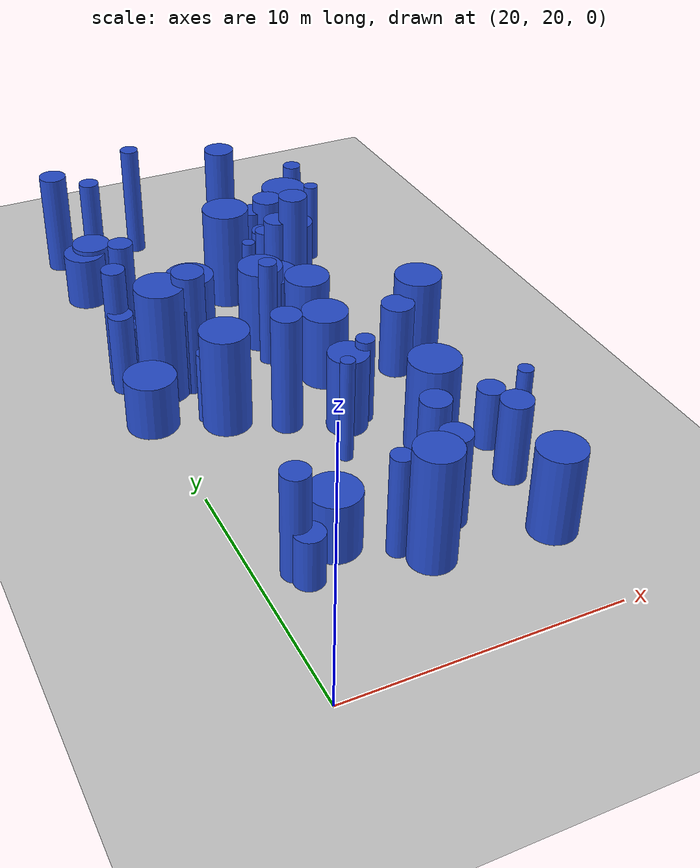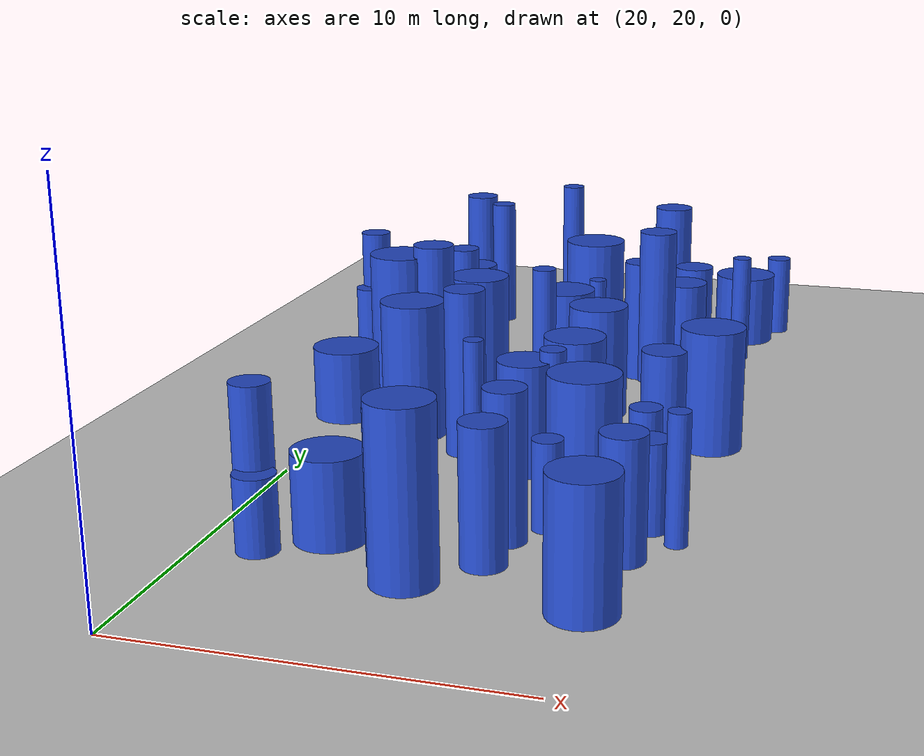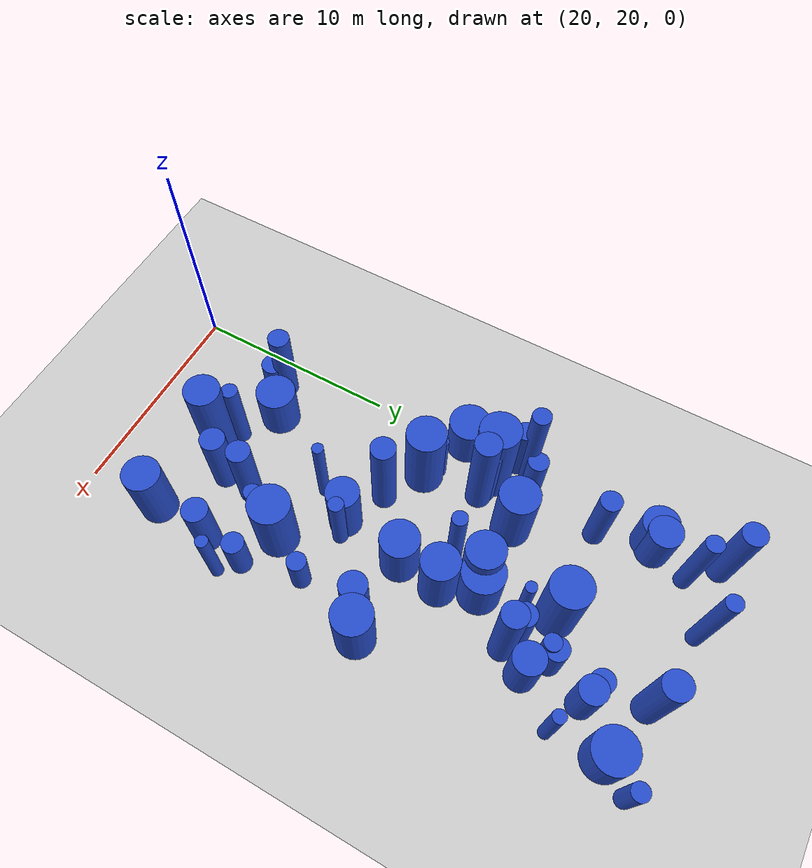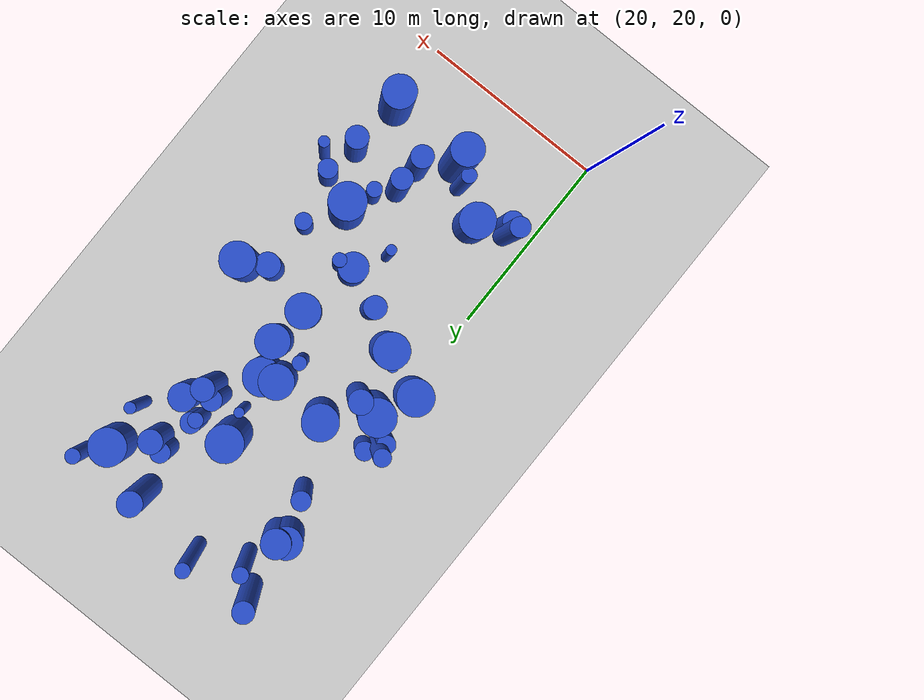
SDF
<sdf version="1.6">
 <world name="default">
  <model name="ground_plane">
   <static>1</static>
   <link name="link">
    <collision name="collision">
     <geometry><plane><normal>0 0 1</normal><size>100 100</size></plane></geometry>
     <surface><friction><ode><mu>100</mu><mu2>50</mu2></ode></friction></surface>
    </collision>
    <visual name="visual">
     <cast_shadows>0</cast_shadows>
     <geometry><plane><normal>0 0 1</normal><size>100 100</size></plane></geometry>
     <material>
      <script><uri>file://media/materials/scripts/gazebo.material</uri><name>Gazebo/Grey</name></script>
     </material>
    </visual>
   </link>
  </model>
  <model name="10">
   <static>0</static>
   <link name="link">
    <inertial>
     <mass>2</mass>
     <inertia><ixx>3.37741</ixx><ixy>0</ixy><ixz>0</ixz><iyy>3.37741</iyy><iyz>0</iyz><izz>0.399415</izz></inertia>
    </inertial>
    <collision name="collision">
     <geometry><cylinder><length>4.36649</length><radius>0.631993</radius></cylinder></geometry>
     <surface><contact><collide_without_contact>1</collide_without_contact></contact></surface>
    </collision>
    <visual name="visual">
     <geometry><cylinder><length>4.36649</length><radius>0.631993</radius></cylinder></geometry>
     <material>
      <script><uri>file://media/materials/scripts/gazebo.material</uri><name>Gazebo/Blue</name></script>
     </material>
    </visual>
    <gravity>0</gravity>
   </link>
   <pose>27.4503 47.0755 2.18325 0 -0 0</pose>
  </model>
  <model name="11">
   <static>0</static>
   <link name="link">
    <inertial>
     <mass>2</mass>
     <inertia><ixx>1.88105</ixx><ixy>0</ixy><ixz>0</ixz><iyy>1.88105</iyy><iyz>0</iyz><izz>0.812984</izz></inertia>
    </inertial>
    <collision name="collision">
     <geometry><cylinder><length>2.97445</length><radius>0.901656</radius></cylinder></geometry>
     <surface><contact><collide_without_contact>1</collide_without_contact></contact></surface>
    </collision>
    <visual name="visual">
     <geometry><cylinder><length>2.97445</length><radius>0.901656</radius></cylinder></geometry>
     <material>
      <script><uri>file://media/materials/scripts/gazebo.material</uri><name>Gazebo/Blue</name></script>
     </material>
    </visual>
    <gravity>0</gravity>
   </link>
   <pose>26.8547 34.9896 1.48722 0 -0 0</pose>
  </model>
  <model name="13">
   <static>0</static>
   <link name="link">
    <inertial>
     <mass>2</mass>
     <inertia><ixx>2.71597</ixx><ixy>0</ixy><ixz>0</ixz><iyy>2.71597</iyy><iyz>0</iyz><izz>0.923373</izz></inertia>
    </inertial>
    <collision name="collision">
     <geometry><cylinder><length>3.67773</length><radius>0.960923</radius></cylinder></geometry>
     <surface><contact><collide_without_contact>1</collide_without_contact></contact></surface>
    </collision>
    <visual name="visual">
     <geometry><cylinder><length>3.67773</length><radius>0.960923</radius></cylinder></geometry>
     <material>
      <script><uri>file://media/materials/scripts/gazebo.material</uri><name>Gazebo/Blue</name></script>
     </material>
    </visual>
    <gravity>0</gravity>
   </link>
   <pose>28.4623 29.5513 1.83887 0 -0 0</pose>
  </model>
  <model name="16">
   <static>0</static>
   <link name="link">
    <inertial>
     <mass>2</mass>
     <inertia><ixx>1.57186</ixx><ixy>0</ixy><ixz>0</ixz><iyy>1.57186</iyy><iyz>0</iyz><izz>0.39585</izz></inertia>
    </inertial>
    <collision name="collision">
     <geometry><cylinder><length>2.87117</length><radius>0.629166</radius></cylinder></geometry>
     <surface><contact><collide_without_contact>1</collide_without_contact></contact></surface>
    </collision>
    <visual name="visual">
     <geometry><cylinder><length>2.87117</length><radius>0.629166</radius></cylinder></geometry>
     <material>
      <script><uri>file://media/materials/scripts/gazebo.material</uri><name>Gazebo/Blue</name></script>
     </material>
    </visual>
    <gravity>0</gravity>
   </link>
   <pose>28.6502 44.5978 1.43558 0 -0 0</pose>
  </model>
  <model name="27">
   <static>0</static>
   <link name="link">
    <inertial>
     <mass>2</mass>
     <inertia><ixx>3.29031</ixx><ixy>0</ixy><ixz>0</ixz><iyy>3.29031</iyy><iyz>0</iyz><izz>0.876091</izz></inertia>
    </inertial>
    <collision name="collision">
     <geometry><cylinder><length>4.13686</length><radius>0.935998</radius></cylinder></geometry>
     <surface><contact><collide_without_contact>1</collide_without_contact></contact></surface>
    </collision>
    <visual name="visual">
     <geometry><cylinder><length>4.13686</length><radius>0.935998</radius></cylinder></geometry>
     <material>
      <script><uri>file://media/materials/scripts/gazebo.material</uri><name>Gazebo/Blue</name></script>
     </material>
    </visual>
    <gravity>0</gravity>
   </link>
   <pose>25.7568 42.1534 2.06843 0 -0 0</pose>
  </model>
  <model name="31">
   <static>0</static>
   <link name="link">
    <inertial>
     <mass>2</mass>
     <inertia>
      <ixx>0.960927</ixx>
      <ixy>0</ixy>
      <ixz>0</ixz>
      <iyy>0.960927</iyy>
      <iyz>0</iyz>
      <izz>0.413143</izz>
     </inertia>
    </inertial>
    <collision name="collision">
     <geometry><cylinder><length>2.12747</length><radius>0.642762</radius></cylinder></geometry>
     <surface><contact><collide_without_contact>1</collide_without_contact></contact></surface>
    </collision>
    <visual name="visual">
     <geometry><cylinder><length>2.12747</length><radius>0.642762</radius></cylinder></geometry>
     <material>
      <script><uri>file://media/materials/scripts/gazebo.material</uri><name>Gazebo/Blue</name></script>
     </material>
    </visual>
    <gravity>0</gravity>
   </link>
   <pose>29.9876 46.2303 1.06374 0 -0 0</pose>
  </model>
  <model name="47">
   <static>0</static>
   <link name="link">
    <inertial>
     <mass>2</mass>
     <inertia><ixx>2.29041</ixx><ixy>0</ixy><ixz>0</ixz><iyy>2.29041</iyy><iyz>0</iyz><izz>0.757429</izz></inertia>
    </inertial>
    <collision name="collision">
     <geometry><cylinder><length>3.38677</length><radius>0.870304</radius></cylinder></geometry>
     <surface><contact><collide_without_contact>1</collide_without_contact></contact></surface>
    </collision>
    <visual name="visual">
     <geometry><cylinder><length>3.38677</length><radius>0.870304</radius></cylinder></geometry>
     <material>
      <script><uri>file://media/materials/scripts/gazebo.material</uri><name>Gazebo/Blue</name></script>
     </material>
    </visual>
    <gravity>0</gravity>
   </link>
   <pose>29.8515 23.8039 1.69338 0 -0 0</pose>
  </model>
  <model name="48">
   <static>0</static>
   <link name="link">
    <inertial>
     <mass>2</mass>
     <inertia>
      <ixx>0.820157</ixx>
      <ixy>0</ixy>
      <ixz>0</ixz>
      <iyy>0.820157</iyy>
      <iyz>0</iyz>
      <izz>0.29591</izz>
     </inertia>
    </inertial>
    <collision name="collision">
     <geometry><cylinder><length>2.00829</length><radius>0.543976</radius></cylinder></geometry>
     <surface><contact><collide_without_contact>1</collide_without_contact></contact></surface>
    </collision>
    <visual name="visual">
     <geometry><cylinder><length>2.00829</length><radius>0.543976</radius></cylinder></geometry>
     <material>
      <script><uri>file://media/materials/scripts/gazebo.material</uri><name>Gazebo/Blue</name></script>
     </material>
    </visual>
    <gravity>0</gravity>
   </link>
   <pose>21.5362 24.945 1.00414 0 -0 0</pose>
  </model>
  <model name="59">
   <static>0</static>
   <link name="link">
    <inertial>
     <mass>2</mass>
     <inertia><ixx>4.03228</ixx><ixy>0</ixy><ixz>0</ixz><iyy>4.03228</iyy><iyz>0</iyz><izz>0.883964</izz></inertia>
    </inertial>
    <collision name="collision">
     <geometry><cylinder><length>4.64131</length><radius>0.940194</radius></cylinder></geometry>
     <surface><contact><collide_without_contact>1</collide_without_contact></contact></surface>
    </collision>
    <visual name="visual">
     <geometry><cylinder><length>4.64131</length><radius>0.940194</radius></cylinder></geometry>
     <material>
      <script><uri>file://media/materials/scripts/gazebo.material</uri><name>Gazebo/Blue</name></script>
     </material>
    </visual>
    <gravity>0</gravity>
   </link>
   <pose>20.989 36.6588 2.32066 0 -0 0</pose>
  </model>
  <model name="62">
   <static>0</static>
   <link name="link">
    <inertial>
     <mass>2</mass>
     <inertia>
      <ixx>1.43756</ixx>
      <ixy>0</ixy>
      <ixz>0</ixz>
      <iyy>1.43756</iyy>
      <iyz>0</iyz>
      <izz>0.0997428</izz>
     </inertia>
    </inertial>
    <collision name="collision">
     <geometry><cylinder><length>2.8855</length><radius>0.315821</radius></cylinder></geometry>
     <surface><contact><collide_without_contact>1</collide_without_contact></contact></surface>
    </collision>
    <visual name="visual">
     <geometry><cylinder><length>2.8855</length><radius>0.315821</radius></cylinder></geometry>
     <material>
      <script><uri>file://media/materials/scripts/gazebo.material</uri><name>Gazebo/Blue</name></script>
     </material>
    </visual>
    <gravity>0</gravity>
   </link>
   <pose>21.7733 34.3418 1.44275 0 -0 0</pose>
  </model>
  <model name="63">
   <static>0</static>
   <link name="link">
    <inertial>
     <mass>2</mass>
     <inertia><ixx>1.03289</ixx><ixy>0</ixy><ixz>0</ixz><iyy>1.03289</iyy><iyz>0</iyz><izz>0.164469</izz></inertia>
    </inertial>
    <collision name="collision">
     <geometry><cylinder><length>2.38829</length><radius>0.405548</radius></cylinder></geometry>
     <surface><contact><collide_without_contact>1</collide_without_contact></contact></surface>
    </collision>
    <visual name="visual">
     <geometry><cylinder><length>2.38829</length><radius>0.405548</radius></cylinder></geometry>
     <material>
      <script><uri>file://media/materials/scripts/gazebo.material</uri><name>Gazebo/Blue</name></script>
     </material>
    </visual>
    <gravity>0</gravity>
   </link>
   <pose>27.9011 28.096 1.19414 0 -0 0</pose>
  </model>
  <model name="68">
   <static>0</static>
   <link name="link">
    <inertial>
     <mass>2</mass>
     <inertia><ixx>1.17766</ixx><ixy>0</ixy><ixz>0</ixz><iyy>1.17766</iyy><iyz>0</iyz><izz>0.157599</izz></inertia>
    </inertial>
    <collision name="collision">
     <geometry><cylinder><length>2.56772</length><radius>0.396987</radius></cylinder></geometry>
     <surface><contact><collide_without_contact>1</collide_without_contact></contact></surface>
    </collision>
    <visual name="visual">
     <geometry><cylinder><length>2.56772</length><radius>0.396987</radius></cylinder></geometry>
     <material>
      <script><uri>file://media/materials/scripts/gazebo.material</uri><name>Gazebo/Blue</name></script>
     </material>
    </visual>
    <gravity>0</gravity>
   </link>
   <pose>27.6168 42.4632 1.28386 0 -0 0</pose>
  </model>
  <model name="70">
   <static>0</static>
   <link name="link">
    <inertial>
     <mass>2</mass>
     <inertia>
      <ixx>2.04255</ixx>
      <ixy>0</ixy>
      <ixz>0</ixz>
      <iyy>2.04255</iyy>
      <iyz>0</iyz>
      <izz>0.0888972</izz>
     </inertia>
    </inertial>
    <collision name="collision">
     <geometry><cylinder><length>3.46246</length><radius>0.298156</radius></cylinder></geometry>
     <surface><contact><collide_without_contact>1</collide_without_contact></contact></surface>
    </collision>
    <visual name="visual">
     <geometry><cylinder><length>3.46246</length><radius>0.298156</radius></cylinder></geometry>
     <material>
      <script><uri>file://media/materials/scripts/gazebo.material</uri><name>Gazebo/Blue</name></script>
     </material>
    </visual>
    <gravity>0</gravity>
   </link>
   <pose>30.3781 43.7936 1.73123 0 -0 0</pose>
  </model>
  <model name="79">
   <static>0</static>
   <link name="link">
    <inertial>
     <mass>2</mass>
     <inertia><ixx>4.14774</ixx><ixy>0</ixy><ixz>0</ixz><iyy>4.14774</iyy><iyz>0</iyz><izz>0.331345</izz></inertia>
    </inertial>
    <collision name="collision">
     <geometry><cylinder><length>4.88799</length><radius>0.575626</radius></cylinder></geometry>
     <surface><contact><collide_without_contact>1</collide_without_contact></contact></surface>
    </collision>
    <visual name="visual">
     <geometry><cylinder><length>4.88799</length><radius>0.575626</radius></cylinder></geometry>
     <material>
      <script><uri>file://media/materials/scripts/gazebo.material</uri><name>Gazebo/Blue</name></script>
     </material>
    </visual>
    <gravity>0</gravity>
   </link>
   <pose>28.1269 40.6889 2.44399 0 -0 0</pose>
  </model>
  <model name="90">
   <static>0</static>
   <link name="link">
    <inertial>
     <mass>2</mass>
     <inertia><ixx>3.14456</ixx><ixy>0</ixy><ixz>0</ixz><iyy>3.14456</iyy><iyz>0</iyz><izz>0.16502</izz></inertia>
    </inertial>
    <collision name="collision">
     <geometry><cylinder><length>4.28629</length><radius>0.406226</radius></cylinder></geometry>
     <surface><contact><collide_without_contact>1</collide_without_contact></contact></surface>
    </collision>
    <visual name="visual">
     <geometry><cylinder><length>4.28629</length><radius>0.406226</radius></cylinder></geometry>
     <material>
      <script><uri>file://media/materials/scripts/gazebo.material</uri><name>Gazebo/Blue</name></script>
     </material>
    </visual>
    <gravity>0</gravity>
   </link>
   <pose>21.3311 46.4355 2.14315 0 -0 0</pose>
  </model>
  <model name="95">
   <static>0</static>
   <link name="link">
    <inertial>
     <mass>2</mass>
     <inertia><ixx>1.74657</ixx><ixy>0</ixy><ixz>0</ixz><iyy>1.74657</iyy><iyz>0</iyz><izz>0.521545</izz></inertia>
    </inertial>
    <collision name="collision">
     <geometry><cylinder><length>2.98577</length><radius>0.722181</radius></cylinder></geometry>
     <surface><contact><collide_without_contact>1</collide_without_contact></contact></surface>
    </collision>
    <visual name="visual">
     <geometry><cylinder><length>2.98577</length><radius>0.722181</radius></cylinder></geometry>
     <material>
      <script><uri>file://media/materials/scripts/gazebo.material</uri><name>Gazebo/Blue</name></script>
     </material>
    </visual>
    <gravity>0</gravity>
   </link>
   <pose>28.7882 41.9118 1.49288 0 -0 0</pose>
  </model>
  <model name="103">
   <static>0</static>
   <link name="link">
    <inertial>
     <mass>2</mass>
     <inertia><ixx>1.77324</ixx><ixy>0</ixy><ixz>0</ixz><iyy>1.77324</iyy><iyz>0</iyz><izz>0.972228</izz></inertia>
    </inertial>
    <collision name="collision">
     <geometry><cylinder><length>2.77898</length><radius>0.986016</radius></cylinder></geometry>
     <surface><contact><collide_without_contact>1</collide_without_contact></contact></surface>
    </collision>
    <visual name="visual">
     <geometry><cylinder><length>2.77898</length><radius>0.986016</radius></cylinder></geometry>
     <material>
      <script><uri>file://media/materials/scripts/gazebo.material</uri><name>Gazebo/Blue</name></script>
     </material>
    </visual>
    <gravity>0</gravity>
   </link>
   <pose>26.3975 38.7434 1.38949 0 -0 0</pose>
  </model>
  <model name="114">
   <static>0</static>
   <link name="link">
    <inertial>
     <mass>2</mass>
     <inertia><ixx>1.3772</ixx><ixy>0</ixy><ixz>0</ixz><iyy>1.3772</iyy><iyz>0</iyz><izz>0.977936</izz></inertia>
    </inertial>
    <collision name="collision">
     <geometry><cylinder><length>2.30855</length><radius>0.988906</radius></cylinder></geometry>
     <surface><contact><collide_without_contact>1</collide_without_contact></contact></surface>
    </collision>
    <visual name="visual">
     <geometry><cylinder><length>2.30855</length><radius>0.988906</radius></cylinder></geometry>
     <material>
      <script><uri>file://media/materials/scripts/gazebo.material</uri><name>Gazebo/Blue</name></script>
     </material>
    </visual>
    <gravity>0</gravity>
   </link>
   <pose>30.1834 46.28 1.15427 0 -0 0</pose>
  </model>
  <model name="117">
   <static>0</static>
   <link name="link">
    <inertial>
     <mass>2</mass>
     <inertia><ixx>2.96429</ixx><ixy>0</ixy><ixz>0</ixz><iyy>2.96429</iyy><iyz>0</iyz><izz>0.263078</izz></inertia>
    </inertial>
    <collision name="collision">
     <geometry><cylinder><length>4.12268</length><radius>0.512911</radius></cylinder></geometry>
     <surface><contact><collide_without_contact>1</collide_without_contact></contact></surface>
    </collision>
    <visual name="visual">
     <geometry><cylinder><length>4.12268</length><radius>0.512911</radius></cylinder></geometry>
     <material>
      <script><uri>file://media/materials/scripts/gazebo.material</uri><name>Gazebo/Blue</name></script>
     </material>
    </visual>
    <gravity>0</gravity>
   </link>
   <pose>21.3006 25.4426 2.06134 0 -0 0</pose>
  </model>
  <model name="132">
   <static>0</static>
   <link name="link">
    <inertial>
     <mass>2</mass>
     <inertia><ixx>3.92176</ixx><ixy>0</ixy><ixz>0</ixz><iyy>3.92176</iyy><iyz>0</iyz><izz>0.324121</izz></inertia>
    </inertial>
    <collision name="collision">
     <geometry><cylinder><length>4.74955</length><radius>0.569316</radius></cylinder></geometry>
     <surface><contact><collide_without_contact>1</collide_without_contact></contact></surface>
    </collision>
    <visual name="visual">
     <geometry><cylinder><length>4.74955</length><radius>0.569316</radius></cylinder></geometry>
     <material>
      <script><uri>file://media/materials/scripts/gazebo.material</uri><name>Gazebo/Blue</name></script>
     </material>
    </visual>
    <gravity>0</gravity>
   </link>
   <pose>24.2784 32.7345 2.37477 0 -0 0</pose>
  </model>
  <model name="139">
   <static>0</static>
   <link name="link">
    <inertial>
     <mass>2</mass>
     <inertia><ixx>2.60105</ixx><ixy>0</ixy><ixz>0</ixz><iyy>2.60105</iyy><iyz>0</iyz><izz>0.858486</izz></inertia>
    </inertial>
    <collision name="collision">
     <geometry><cylinder><length>3.60982</length><radius>0.926545</radius></cylinder></geometry>
     <surface><contact><collide_without_contact>1</collide_without_contact></contact></surface>
    </collision>
    <visual name="visual">
     <geometry><cylinder><length>3.60982</length><radius>0.926545</radius></cylinder></geometry>
     <material>
      <script><uri>file://media/materials/scripts/gazebo.material</uri><name>Gazebo/Blue</name></script>
     </material>
    </visual>
    <gravity>0</gravity>
   </link>
   <pose>22.8437 38.6061 1.80491 0 -0 0</pose>
  </model>
  <model name="146">
   <static>0</static>
   <link name="link">
    <inertial>
     <mass>2</mass>
     <inertia><ixx>3.90844</ixx><ixy>0</ixy><ixz>0</ixz><iyy>3.90844</iyy><iyz>0</iyz><izz>0.141824</izz></inertia>
    </inertial>
    <collision name="collision">
     <geometry><cylinder><length>4.79845</length><radius>0.376595</radius></cylinder></geometry>
     <surface><contact><collide_without_contact>1</collide_without_contact></contact></surface>
    </collision>
    <visual name="visual">
     <geometry><cylinder><length>4.79845</length><radius>0.376595</radius></cylinder></geometry>
     <material>
      <script><uri>file://media/materials/scripts/gazebo.material</uri><name>Gazebo/Blue</name></script>
     </material>
    </visual>
    <gravity>0</gravity>
   </link>
   <pose>23.5936 47.7885 2.39923 0 -0 0</pose>
  </model>
  <model name="147">
   <static>0</static>
   <link name="link">
    <inertial>
     <mass>2</mass>
     <inertia><ixx>1.17156</ixx><ixy>0</ixy><ixz>0</ixz><iyy>1.17156</iyy><iyz>0</iyz><izz>0.711306</izz></inertia>
    </inertial>
    <collision name="collision">
     <geometry><cylinder><length>2.21256</length><radius>0.84339</radius></cylinder></geometry>
     <surface><contact><collide_without_contact>1</collide_without_contact></contact></surface>
    </collision>
    <visual name="visual">
     <geometry><cylinder><length>2.21256</length><radius>0.84339</radius></cylinder></geometry>
     <material>
      <script><uri>file://media/materials/scripts/gazebo.material</uri><name>Gazebo/Blue</name></script>
     </material>
    </visual>
    <gravity>0</gravity>
   </link>
   <pose>20.3388 44.4373 1.10628 0 -0 0</pose>
  </model>
  <model name="156">
   <static>0</static>
   <link name="link">
    <inertial>
     <mass>2</mass>
     <inertia>
      <ixx>0.933154</ixx>
      <ixy>0</ixy>
      <ixz>0</ixz>
      <iyy>0.933154</iyy>
      <iyz>0</iyz>
      <izz>0.201317</izz>
     </inertia>
    </inertial>
    <collision name="collision">
     <geometry><cylinder><length>2.23494</length><radius>0.448684</radius></cylinder></geometry>
     <surface><contact><collide_without_contact>1</collide_without_contact></contact></surface>
    </collision>
    <visual name="visual">
     <geometry><cylinder><length>2.23494</length><radius>0.448684</radius></cylinder></geometry>
     <material>
      <script><uri>file://media/materials/scripts/gazebo.material</uri><name>Gazebo/Blue</name></script>
     </material>
    </visual>
    <gravity>0</gravity>
   </link>
   <pose>29.659 31.5125 1.11747 0 -0 0</pose>
  </model>
  <model name="158">
   <static>0</static>
   <link name="link">
    <inertial>
     <mass>2</mass>
     <inertia><ixx>1.3482</ixx><ixy>0</ixy><ixz>0</ixz><iyy>1.3482</iyy><iyz>0</iyz><izz>0.881252</izz></inertia>
    </inertial>
    <collision name="collision">
     <geometry><cylinder><length>2.33355</length><radius>0.93875</radius></cylinder></geometry>
     <surface><contact><collide_without_contact>1</collide_without_contact></contact></surface>
    </collision>
    <visual name="visual">
     <geometry><cylinder><length>2.33355</length><radius>0.93875</radius></cylinder></geometry>
     <material>
      <script><uri>file://media/materials/scripts/gazebo.material</uri><name>Gazebo/Blue</name></script>
     </material>
    </visual>
    <gravity>0</gravity>
   </link>
   <pose>22.9559 26.086 1.16677 0 -0 0</pose>
  </model>
  <model name="165">
   <static>0</static>
   <link name="link">
    <inertial>
     <mass>2</mass>
     <inertia><ixx>2.51292</ixx><ixy>0</ixy><ixz>0</ixz><iyy>2.51292</iyy><iyz>0</iyz><izz>0.832812</izz></inertia>
    </inertial>
    <collision name="collision">
     <geometry><cylinder><length>3.5467</length><radius>0.912586</radius></cylinder></geometry>
     <surface><contact><collide_without_contact>1</collide_without_contact></contact></surface>
    </collision>
    <visual name="visual">
     <geometry><cylinder><length>3.5467</length><radius>0.912586</radius></cylinder></geometry>
     <material>
      <script><uri>file://media/materials/scripts/gazebo.material</uri><name>Gazebo/Blue</name></script>
     </material>
    </visual>
    <gravity>0</gravity>
   </link>
   <pose>30.8305 35.0294 1.77335 0 -0 0</pose>
  </model>
  <model name="174">
   <static>0</static>
   <link name="link">
    <inertial>
     <mass>2</mass>
     <inertia><ixx>3.70872</ixx><ixy>0</ixy><ixz>0</ixz><iyy>3.70872</iyy><iyz>0</iyz><izz>0.698748</izz></inertia>
    </inertial>
    <collision name="collision">
     <geometry><cylinder><length>4.48955</length><radius>0.835911</radius></cylinder></geometry>
     <surface><contact><collide_without_contact>1</collide_without_contact></contact></surface>
    </collision>
    <visual name="visual">
     <geometry><cylinder><length>4.48955</length><radius>0.835911</radius></cylinder></geometry>
     <material>
      <script><uri>file://media/materials/scripts/gazebo.material</uri><name>Gazebo/Blue</name></script>
     </material>
    </visual>
    <gravity>0</gravity>
   </link>
   <pose>25.5349 24.2179 2.24478 0 -0 0</pose>
  </model>
  <model name="201">
   <static>0</static>
   <link name="link">
    <inertial>
     <mass>2</mass>
     <inertia><ixx>1.67988</ixx><ixy>0</ixy><ixz>0</ixz><iyy>1.67988</iyy><iyz>0</iyz><izz>0.413438</izz></inertia>
    </inertial>
    <collision name="collision">
     <geometry><cylinder><length>2.97304</length><radius>0.642992</radius></cylinder></geometry>
     <surface><contact><collide_without_contact>1</collide_without_contact></contact></surface>
    </collision>
    <visual name="visual">
     <geometry><cylinder><length>2.97304</length><radius>0.642992</radius></cylinder></geometry>
     <material>
      <script><uri>file://media/materials/scripts/gazebo.material</uri><name>Gazebo/Blue</name></script>
     </material>
    </visual>
    <gravity>0</gravity>
   </link>
   <pose>29.5918 34.3148 1.48652 0 -0 0</pose>
  </model>
  <model name="221">
   <static>0</static>
   <link name="link">
    <inertial>
     <mass>2</mass>
     <inertia><ixx>1.25885</ixx><ixy>0</ixy><ixz>0</ixz><iyy>1.25885</iyy><iyz>0</iyz><izz>0.604768</izz></inertia>
    </inertial>
    <collision name="collision">
     <geometry><cylinder><length>2.39558</length><radius>0.777668</radius></cylinder></geometry>
     <surface><contact><collide_without_contact>1</collide_without_contact></contact></surface>
    </collision>
    <visual name="visual">
     <geometry><cylinder><length>2.39558</length><radius>0.777668</radius></cylinder></geometry>
     <material>
      <script><uri>file://media/materials/scripts/gazebo.material</uri><name>Gazebo/Blue</name></script>
     </material>
    </visual>
    <gravity>0</gravity>
   </link>
   <pose>20.7351 44.7429 1.19779 0 -0 0</pose>
  </model>
  <model name="225">
   <static>0</static>
   <link name="link">
    <inertial>
     <mass>2</mass>
     <inertia><ixx>4.17331</ixx><ixy>0</ixy><ixz>0</ixz><iyy>4.17331</iyy><iyz>0</iyz><izz>0.192739</izz></inertia>
    </inertial>
    <collision name="collision">
     <geometry><cylinder><length>4.94587</length><radius>0.439021</radius></cylinder></geometry>
     <surface><contact><collide_without_contact>1</collide_without_contact></contact></surface>
    </collision>
    <visual name="visual">
     <geometry><cylinder><length>4.94587</length><radius>0.439021</radius></cylinder></geometry>
     <material>
      <script><uri>file://media/materials/scripts/gazebo.material</uri><name>Gazebo/Blue</name></script>
     </material>
    </visual>
    <gravity>0</gravity>
   </link>
   <pose>19.6943 37.9431 2.47293 0 -0 0</pose>
  </model>
  <model name="236">
   <static>0</static>
   <link name="link">
    <inertial>
     <mass>2</mass>
     <inertia>
      <ixx>1.72869</ixx>
      <ixy>0</ixy>
      <ixz>0</ixz>
      <iyy>1.72869</iyy>
      <iyz>0</iyz>
      <izz>0.0703693</izz>
     </inertia>
    </inertial>
    <collision name="collision">
     <geometry><cylinder><length>3.18764</length><radius>0.265272</radius></cylinder></geometry>
     <surface><contact><collide_without_contact>1</collide_without_contact></contact></surface>
    </collision>
    <visual name="visual">
     <geometry><cylinder><length>3.18764</length><radius>0.265272</radius></cylinder></geometry>
     <material>
      <script><uri>file://media/materials/scripts/gazebo.material</uri><name>Gazebo/Blue</name></script>
     </material>
    </visual>
    <gravity>0</gravity>
   </link>
   <pose>26.1728 40.7338 1.59382 0 -0 0</pose>
  </model>
  <model name="240">
   <static>0</static>
   <link name="link">
    <inertial>
     <mass>2</mass>
     <inertia><ixx>3.38686</ixx><ixy>0</ixy><ixz>0</ixz><iyy>3.38686</iyy><iyz>0</iyz><izz>0.16913</izz></inertia>
    </inertial>
    <collision name="collision">
     <geometry><cylinder><length>4.45126</length><radius>0.411254</radius></cylinder></geometry>
     <surface><contact><collide_without_contact>1</collide_without_contact></contact></surface>
    </collision>
    <visual name="visual">
     <geometry><cylinder><length>4.45126</length><radius>0.411254</radius></cylinder></geometry>
     <material>
      <script><uri>file://media/materials/scripts/gazebo.material</uri><name>Gazebo/Blue</name></script>
     </material>
    </visual>
    <gravity>0</gravity>
   </link>
   <pose>25.4572 24.4716 2.22563 0 -0 0</pose>
  </model>
  <model name="319">
   <static>0</static>
   <link name="link">
    <inertial>
     <mass>2</mass>
     <inertia><ixx>2.28124</ixx><ixy>0</ixy><ixz>0</ixz><iyy>2.28124</iyy><iyz>0</iyz><izz>0.763136</izz></inertia>
    </inertial>
    <collision name="collision">
     <geometry><cylinder><length>3.3761</length><radius>0.873577</radius></cylinder></geometry>
     <surface><contact><collide_without_contact>1</collide_without_contact></contact></surface>
    </collision>
    <visual name="visual">
     <geometry><cylinder><length>3.3761</length><radius>0.873577</radius></cylinder></geometry>
     <material>
      <script><uri>file://media/materials/scripts/gazebo.material</uri><name>Gazebo/Blue</name></script>
     </material>
    </visual>
    <gravity>0</gravity>
   </link>
   <pose>27.0643 37.0284 1.68805 0 -0 0</pose>
  </model>
  <model name="321">
   <static>0</static>
   <link name="link">
    <inertial>
     <mass>2</mass>
     <inertia><ixx>1.24074</ixx><ixy>0</ixy><ixz>0</ixz><iyy>1.24074</iyy><iyz>0</iyz><izz>0.15485</izz></inertia>
    </inertial>
    <collision name="collision">
     <geometry><cylinder><length>2.64195</length><radius>0.39351</radius></cylinder></geometry>
     <surface><contact><collide_without_contact>1</collide_without_contact></contact></surface>
    </collision>
    <visual name="visual">
     <geometry><cylinder><length>2.64195</length><radius>0.39351</radius></cylinder></geometry>
     <material>
      <script><uri>file://media/materials/scripts/gazebo.material</uri><name>Gazebo/Blue</name></script>
     </material>
    </visual>
    <gravity>0</gravity>
   </link>
   <pose>31.186 47.5744 1.32097 0 -0 0</pose>
  </model>
  <model name="331">
   <static>0</static>
   <link name="link">
    <inertial>
     <mass>2</mass>
     <inertia><ixx>1.10443</ixx><ixy>0</ixy><ixz>0</ixz><iyy>1.10443</iyy><iyz>0</iyz><izz>0.261158</izz></inertia>
    </inertial>
    <collision name="collision">
     <geometry><cylinder><length>2.41725</length><radius>0.511036</radius></cylinder></geometry>
     <surface><contact><collide_without_contact>1</collide_without_contact></contact></surface>
    </collision>
    <visual name="visual">
     <geometry><cylinder><length>2.41725</length><radius>0.511036</radius></cylinder></geometry>
     <material>
      <script><uri>file://media/materials/scripts/gazebo.material</uri><name>Gazebo/Blue</name></script>
     </material>
    </visual>
    <gravity>0</gravity>
   </link>
   <pose>30.3345 28.7369 1.20863 0 -0 0</pose>
  </model>
  <model name="333">
   <static>0</static>
   <link name="link">
    <inertial>
     <mass>2</mass>
     <inertia><ixx>2.64031</ixx><ixy>0</ixy><ixz>0</ixz><iyy>2.64031</iyy><iyz>0</iyz><izz>0.147649</izz></inertia>
    </inertial>
    <collision name="collision">
     <geometry><cylinder><length>3.92414</length><radius>0.384251</radius></cylinder></geometry>
     <surface><contact><collide_without_contact>1</collide_without_contact></contact></surface>
    </collision>
    <visual name="visual">
     <geometry><cylinder><length>3.92414</length><radius>0.384251</radius></cylinder></geometry>
     <material>
      <script><uri>file://media/materials/scripts/gazebo.material</uri><name>Gazebo/Blue</name></script>
     </material>
    </visual>
    <gravity>0</gravity>
   </link>
   <pose>24.7073 25.0018 1.96207 0 -0 0</pose>
  </model>
  <model name="338">
   <static>0</static>
   <link name="link">
    <inertial>
     <mass>2</mass>
     <inertia><ixx>1.96786</ixx><ixy>0</ixy><ixz>0</ixz><iyy>1.96786</iyy><iyz>0</iyz><izz>0.596006</izz></inertia>
    </inertial>
    <collision name="collision">
     <geometry><cylinder><length>3.16531</length><radius>0.772014</radius></cylinder></geometry>
     <surface><contact><collide_without_contact>1</collide_without_contact></contact></surface>
    </collision>
    <visual name="visual">
     <geometry><cylinder><length>3.16531</length><radius>0.772014</radius></cylinder></geometry>
     <material>
      <script><uri>file://media/materials/scripts/gazebo.material</uri><name>Gazebo/Blue</name></script>
     </material>
    </visual>
    <gravity>0</gravity>
   </link>
   <pose>26.2659 31.8142 1.58265 0 -0 0</pose>
  </model>
  <model name="346">
   <static>0</static>
   <link name="link">
    <inertial>
     <mass>2</mass>
     <inertia><ixx>2.33877</ixx><ixy>0</ixy><ixz>0</ixz><iyy>2.33877</iyy><iyz>0</iyz><izz>0.793611</izz></inertia>
    </inertial>
    <collision name="collision">
     <geometry><cylinder><length>3.41347</length><radius>0.890849</radius></cylinder></geometry>
     <surface><contact><collide_without_contact>1</collide_without_contact></contact></surface>
    </collision>
    <visual name="visual">
     <geometry><cylinder><length>3.41347</length><radius>0.890849</radius></cylinder></geometry>
     <material>
      <script><uri>file://media/materials/scripts/gazebo.material</uri><name>Gazebo/Blue</name></script>
     </material>
    </visual>
    <gravity>0</gravity>
   </link>
   <pose>25.7003 38.4359 1.70673 0 -0 0</pose>
  </model>
  <model name="348">
   <static>0</static>
   <link name="link">
    <inertial>
     <mass>2</mass>
     <inertia><ixx>2.75886</ixx><ixy>0</ixy><ixz>0</ixz><iyy>2.75886</iyy><iyz>0</iyz><izz>0.307883</izz></inertia>
    </inertial>
    <collision name="collision">
     <geometry><cylinder><length>3.95342</length><radius>0.554872</radius></cylinder></geometry>
     <surface><contact><collide_without_contact>1</collide_without_contact></contact></surface>
    </collision>
    <visual name="visual">
     <geometry><cylinder><length>3.95342</length><radius>0.554872</radius></cylinder></geometry>
     <material>
      <script><uri>file://media/materials/scripts/gazebo.material</uri><name>Gazebo/Blue</name></script>
     </material>
    </visual>
    <gravity>0</gravity>
   </link>
   <pose>27.1026 27.1209 1.97671 0 -0 0</pose>
  </model>
  <model name="358">
   <static>0</static>
   <link name="link">
    <inertial>
     <mass>2</mass>
     <inertia>
      <ixx>2.02351</ixx>
      <ixy>0</ixy>
      <ixz>0</ixz>
      <iyy>2.02351</iyy>
      <iyz>0</iyz>
      <izz>0.0849161</izz>
     </inertia>
    </inertial>
    <collision name="collision">
     <geometry><cylinder><length>3.44765</length><radius>0.291404</radius></cylinder></geometry>
     <surface><contact><collide_without_contact>1</collide_without_contact></contact></surface>
    </collision>
    <visual name="visual">
     <geometry><cylinder><length>3.44765</length><radius>0.291404</radius></cylinder></geometry>
     <material>
      <script><uri>file://media/materials/scripts/gazebo.material</uri><name>Gazebo/Blue</name></script>
     </material>
    </visual>
    <gravity>0</gravity>
   </link>
   <pose>31.1677 27.9876 1.72383 0 -0 0</pose>
  </model>
  <model name="360">
   <static>0</static>
   <link name="link">
    <inertial>
     <mass>2</mass>
     <inertia><ixx>2.29079</ixx><ixy>0</ixy><ixz>0</ixz><iyy>2.29079</iyy><iyz>0</iyz><izz>0.246065</izz></inertia>
    </inertial>
    <collision name="collision">
     <geometry><cylinder><length>3.60646</length><radius>0.496049</radius></cylinder></geometry>
     <surface><contact><collide_without_contact>1</collide_without_contact></contact></surface>
    </collision>
    <visual name="visual">
     <geometry><cylinder><length>3.60646</length><radius>0.496049</radius></cylinder></geometry>
     <material>
      <script><uri>file://media/materials/scripts/gazebo.material</uri><name>Gazebo/Blue</name></script>
     </material>
    </visual>
    <gravity>0</gravity>
   </link>
   <pose>21.2186 42.0883 1.80323 0 -0 0</pose>
  </model>
  <model name="361">
   <static>0</static>
   <link name="link">
    <inertial>
     <mass>2</mass>
     <inertia><ixx>1.91356</ixx><ixy>0</ixy><ixz>0</ixz><iyy>1.91356</iyy><iyz>0</iyz><izz>0.2254</izz></inertia>
    </inertial>
    <collision name="collision">
     <geometry><cylinder><length>3.28712</length><radius>0.474763</radius></cylinder></geometry>
     <surface><contact><collide_without_contact>1</collide_without_contact></contact></surface>
    </collision>
    <visual name="visual">
     <geometry><cylinder><length>3.28712</length><radius>0.474763</radius></cylinder></geometry>
     <material>
      <script><uri>file://media/materials/scripts/gazebo.material</uri><name>Gazebo/Blue</name></script>
     </material>
    </visual>
    <gravity>0</gravity>
   </link>
   <pose>19.6861 37.478 1.64356 0 -0 0</pose>
  </model>
  <model name="366">
   <static>0</static>
   <link name="link">
    <inertial>
     <mass>2</mass>
     <inertia><ixx>1.11904</ixx><ixy>0</ixy><ixz>0</ixz><iyy>1.11904</iyy><iyz>0</iyz><izz>0.291069</izz></inertia>
    </inertial>
    <collision name="collision">
     <geometry><cylinder><length>2.41682</length><radius>0.539508</radius></cylinder></geometry>
     <surface><contact><collide_without_contact>1</collide_without_contact></contact></surface>
    </collision>
    <visual name="visual">
     <geometry><cylinder><length>2.41682</length><radius>0.539508</radius></cylinder></geometry>
     <material>
      <script><uri>file://media/materials/scripts/gazebo.material</uri><name>Gazebo/Blue</name></script>
     </material>
    </visual>
    <gravity>0</gravity>
   </link>
   <pose>27.727 42.7372 1.20841 0 -0 0</pose>
  </model>
  <model name="407">
   <static>0</static>
   <link name="link">
    <inertial>
     <mass>2</mass>
     <inertia><ixx>2.55348</ixx><ixy>0</ixy><ixz>0</ixz><iyy>2.55348</iyy><iyz>0</iyz><izz>0.283404</izz></inertia>
    </inertial>
    <collision name="collision">
     <geometry><cylinder><length>3.80403</length><radius>0.532357</radius></cylinder></geometry>
     <surface><contact><collide_without_contact>1</collide_without_contact></contact></surface>
    </collision>
    <visual name="visual">
     <geometry><cylinder><length>3.80403</length><radius>0.532357</radius></cylinder></geometry>
     <material>
      <script><uri>file://media/materials/scripts/gazebo.material</uri><name>Gazebo/Blue</name></script>
     </material>
    </visual>
    <gravity>0</gravity>
   </link>
   <pose>27.5534 41.0103 1.90202 0 -0 0</pose>
  </model>
  <model name="420">
   <static>0</static>
   <link name="link">
    <inertial>
     <mass>2</mass>
     <inertia><ixx>2.34191</ixx><ixy>0</ixy><ixz>0</ixz><iyy>2.34191</iyy><iyz>0</iyz><izz>0.340584</izz></inertia>
    </inertial>
    <collision name="collision">
     <geometry><cylinder><length>3.60967</length><radius>0.583596</radius></cylinder></geometry>
     <surface><contact><collide_without_contact>1</collide_without_contact></contact></surface>
    </collision>
    <visual name="visual">
     <geometry><cylinder><length>3.60967</length><radius>0.583596</radius></cylinder></geometry>
     <material>
      <script><uri>file://media/materials/scripts/gazebo.material</uri><name>Gazebo/Blue</name></script>
     </material>
    </visual>
    <gravity>0</gravity>
   </link>
   <pose>27.0182 25.6217 1.80484 0 -0 0</pose>
  </model>
  <model name="428">
   <static>0</static>
   <link name="link">
    <inertial>
     <mass>2</mass>
     <inertia>
      <ixx>0.877178</ixx>
      <ixy>0</ixy>
      <ixz>0</ixz>
      <iyy>0.877178</iyy>
      <iyz>0</iyz>
      <izz>0.245738</izz>
     </inertia>
    </inertial>
    <collision name="collision">
     <geometry><cylinder><length>2.1274</length><radius>0.49572</radius></cylinder></geometry>
     <surface><contact><collide_without_contact>1</collide_without_contact></contact></surface>
    </collision>
    <visual name="visual">
     <geometry><cylinder><length>2.1274</length><radius>0.49572</radius></cylinder></geometry>
     <material>
      <script><uri>file://media/materials/scripts/gazebo.material</uri><name>Gazebo/Blue</name></script>
     </material>
    </visual>
    <gravity>0</gravity>
   </link>
   <pose>20.167 38.4894 1.0637 0 -0 0</pose>
  </model>
  <model name="430">
   <static>0</static>
   <link name="link">
    <inertial>
     <mass>2</mass>
     <inertia><ixx>2.40307</ixx><ixy>0</ixy><ixz>0</ixz><iyy>2.40307</iyy><iyz>0</iyz><izz>0.356842</izz></inertia>
    </inertial>
    <collision name="collision">
     <geometry><cylinder><length>3.65348</length><radius>0.597363</radius></cylinder></geometry>
     <surface><contact><collide_without_contact>1</collide_without_contact></contact></surface>
    </collision>
    <visual name="visual">
     <geometry><cylinder><length>3.65348</length><radius>0.597363</radius></cylinder></geometry>
     <material>
      <script><uri>file://media/materials/scripts/gazebo.material</uri><name>Gazebo/Blue</name></script>
     </material>
    </visual>
    <gravity>0</gravity>
   </link>
   <pose>21.751 36.627 1.82674 0 -0 0</pose>
  </model>
  <model name="438">
   <static>0</static>
   <link name="link">
    <inertial>
     <mass>2</mass>
     <inertia><ixx>1.24799</ixx><ixy>0</ixy><ixz>0</ixz><iyy>1.24799</iyy><iyz>0</iyz><izz>0.946079</izz></inertia>
    </inertial>
    <collision name="collision">
     <geometry><cylinder><length>2.15632</length><radius>0.972666</radius></cylinder></geometry>
     <surface><contact><collide_without_contact>1</collide_without_contact></contact></surface>
    </collision>
    <visual name="visual">
     <geometry><cylinder><length>2.15632</length><radius>0.972666</radius></cylinder></geometry>
     <material>
      <script><uri>file://media/materials/scripts/gazebo.material</uri><name>Gazebo/Blue</name></script>
     </material>
    </visual>
    <gravity>0</gravity>
   </link>
   <pose>19.8415 34.8429 1.07816 0 -0 0</pose>
  </model>
  <model name="445">
   <static>0</static>
   <link name="link">
    <inertial>
     <mass>2</mass>
     <inertia><ixx>2.07615</ixx><ixy>0</ixy><ixz>0</ixz><iyy>2.07615</iyy><iyz>0</iyz><izz>0.128136</izz></inertia>
    </inertial>
    <collision name="collision">
     <geometry><cylinder><length>3.47455</length><radius>0.357961</radius></cylinder></geometry>
     <surface><contact><collide_without_contact>1</collide_without_contact></contact></surface>
    </collision>
    <visual name="visual">
     <geometry><cylinder><length>3.47455</length><radius>0.357961</radius></cylinder></geometry>
     <material>
      <script><uri>file://media/materials/scripts/gazebo.material</uri><name>Gazebo/Blue</name></script>
     </material>
    </visual>
    <gravity>0</gravity>
   </link>
   <pose>27.0066 31.9656 1.73727 0 -0 0</pose>
  </model>
  <model name="446">
   <static>0</static>
   <link name="link">
    <inertial>
     <mass>2</mass>
     <inertia><ixx>1.03632</ixx><ixy>0</ixy><ixz>0</ixz><iyy>1.03632</iyy><iyz>0</iyz><izz>0.27463</izz></inertia>
    </inertial>
    <collision name="collision">
     <geometry><cylinder><length>2.32251</length><radius>0.524052</radius></cylinder></geometry>
     <surface><contact><collide_without_contact>1</collide_without_contact></contact></surface>
    </collision>
    <visual name="visual">
     <geometry><cylinder><length>2.32251</length><radius>0.524052</radius></cylinder></geometry>
     <material>
      <script><uri>file://media/materials/scripts/gazebo.material</uri><name>Gazebo/Blue</name></script>
     </material>
    </visual>
    <gravity>0</gravity>
   </link>
   <pose>27.9862 44.848 1.16125 0 -0 0</pose>
  </model>
  <model name="451">
   <static>0</static>
   <link name="link">
    <inertial>
     <mass>2</mass>
     <inertia><ixx>3.20944</ixx><ixy>0</ixy><ixz>0</ixz><iyy>3.20944</iyy><iyz>0</iyz><izz>0.306306</izz></inertia>
    </inertial>
    <collision name="collision">
     <geometry><cylinder><length>4.28225</length><radius>0.553449</radius></cylinder></geometry>
     <surface><contact><collide_without_contact>1</collide_without_contact></contact></surface>
    </collision>
    <visual name="visual">
     <geometry><cylinder><length>4.28225</length><radius>0.553449</radius></cylinder></geometry>
     <material>
      <script><uri>file://media/materials/scripts/gazebo.material</uri><name>Gazebo/Blue</name></script>
     </material>
    </visual>
    <gravity>0</gravity>
   </link>
   <pose>20.1297 47.7061 2.14113 0 -0 0</pose>
  </model>
  <model name="471">
   <static>0</static>
   <link name="link">
    <inertial>
     <mass>2</mass>
     <inertia><ixx>3.08242</ixx><ixy>0</ixy><ixz>0</ixz><iyy>3.08242</iyy><iyz>0</iyz><izz>0.841803</izz></inertia>
    </inertial>
    <collision name="collision">
     <geometry><cylinder><length>3.99613</length><radius>0.917498</radius></cylinder></geometry>
     <surface><contact><collide_without_contact>1</collide_without_contact></contact></surface>
    </collision>
    <visual name="visual">
     <geometry><cylinder><length>3.99613</length><radius>0.917498</radius></cylinder></geometry>
     <material>
      <script><uri>file://media/materials/scripts/gazebo.material</uri><name>Gazebo/Blue</name></script>
     </material>
    </visual>
    <gravity>0</gravity>
   </link>
   <pose>22.3609 33.8163 1.99807 0 -0 0</pose>
  </model>
  <model name="476">
   <static>0</static>
   <link name="link">
    <inertial>
     <mass>2</mass>
     <inertia><ixx>4.34949</ixx><ixy>0</ixy><ixz>0</ixz><iyy>4.34949</iyy><iyz>0</iyz><izz>0.36624</izz></inertia>
    </inertial>
    <collision name="collision">
     <geometry><cylinder><length>4.99982</length><radius>0.605178</radius></cylinder></geometry>
     <surface><contact><collide_without_contact>1</collide_without_contact></contact></surface>
    </collision>
    <visual name="visual">
     <geometry><cylinder><length>4.99982</length><radius>0.605178</radius></cylinder></geometry>
     <material>
      <script><uri>file://media/materials/scripts/gazebo.material</uri><name>Gazebo/Blue</name></script>
     </material>
    </visual>
    <gravity>0</gravity>
   </link>
   <pose>22.0666 36.56 2.49991 0 -0 0</pose>
  </model>
  <model name="477">
   <static>0</static>
   <link name="link">
    <inertial>
     <mass>2</mass>
     <inertia><ixx>1.92629</ixx><ixy>0</ixy><ixz>0</ixz><iyy>1.92629</iyy><iyz>0</iyz><izz>0.353614</izz></inertia>
    </inertial>
    <collision name="collision">
     <geometry><cylinder><length>3.23989</length><radius>0.594655</radius></cylinder></geometry>
     <surface><contact><collide_without_contact>1</collide_without_contact></contact></surface>
    </collision>
    <visual name="visual">
     <geometry><cylinder><length>3.23989</length><radius>0.594655</radius></cylinder></geometry>
     <material>
      <script><uri>file://media/materials/scripts/gazebo.material</uri><name>Gazebo/Blue</name></script>
     </material>
    </visual>
    <gravity>0</gravity>
   </link>
   <pose>30.0843 26.7871 1.61994 0 -0 0</pose>
  </model>
  <model name="488">
   <static>0</static>
   <link name="link">
    <inertial>
     <mass>2</mass>
     <inertia><ixx>3.27043</ixx><ixy>0</ixy><ixz>0</ixz><iyy>3.27043</iyy><iyz>0</iyz><izz>0.126154</izz></inertia>
    </inertial>
    <collision name="collision">
     <geometry><cylinder><length>4.38682</length><radius>0.355182</radius></cylinder></geometry>
     <surface><contact><collide_without_contact>1</collide_without_contact></contact></surface>
    </collision>
    <visual name="visual">
     <geometry><cylinder><length>4.38682</length><radius>0.355182</radius></cylinder></geometry>
     <material>
      <script><uri>file://media/materials/scripts/gazebo.material</uri><name>Gazebo/Blue</name></script>
     </material>
    </visual>
    <gravity>0</gravity>
   </link>
   <pose>25.4004 36.9787 2.19341 0 -0 0</pose>
  </model>
  <model name="495">
   <static>0</static>
   <link name="link">
    <inertial>
     <mass>2</mass>
     <inertia><ixx>2.88822</ixx><ixy>0</ixy><ixz>0</ixz><iyy>2.88822</iyy><iyz>0</iyz><izz>0.070801</izz></inertia>
    </inertial>
    <collision name="collision">
     <geometry><cylinder><length>4.13726</length><radius>0.266085</radius></cylinder></geometry>
     <surface><contact><collide_without_contact>1</collide_without_contact></contact></surface>
    </collision>
    <visual name="visual">
     <geometry><cylinder><length>4.13726</length><radius>0.266085</radius></cylinder></geometry>
     <material>
      <script><uri>file://media/materials/scripts/gazebo.material</uri><name>Gazebo/Blue</name></script>
     </material>
    </visual>
    <gravity>0</gravity>
   </link>
   <pose>25.3691 30.107 2.06863 0 -0 0</pose>
  </model>
 </world>
</sdf>
